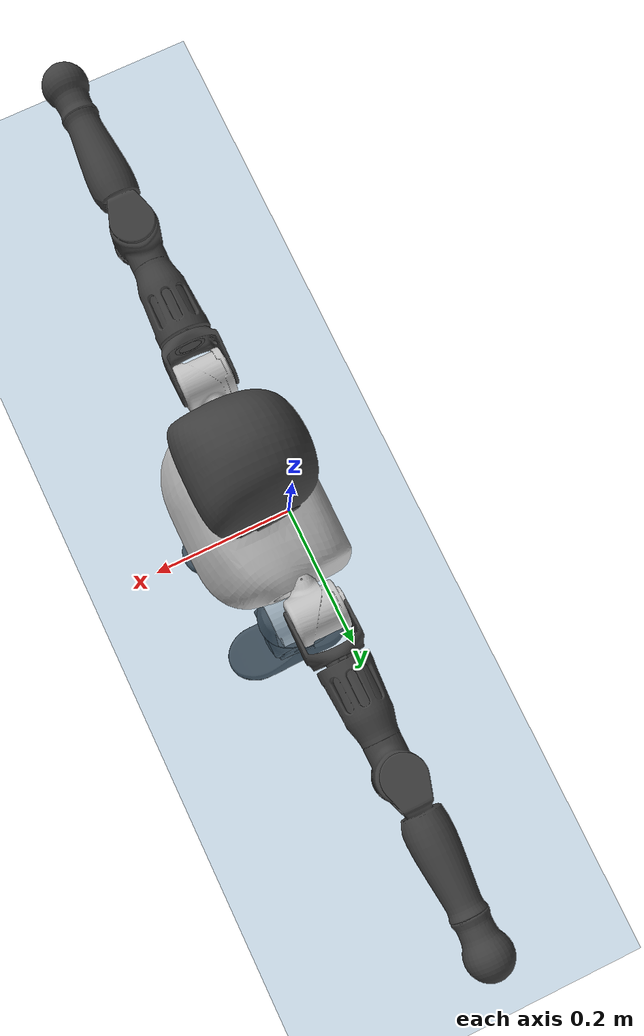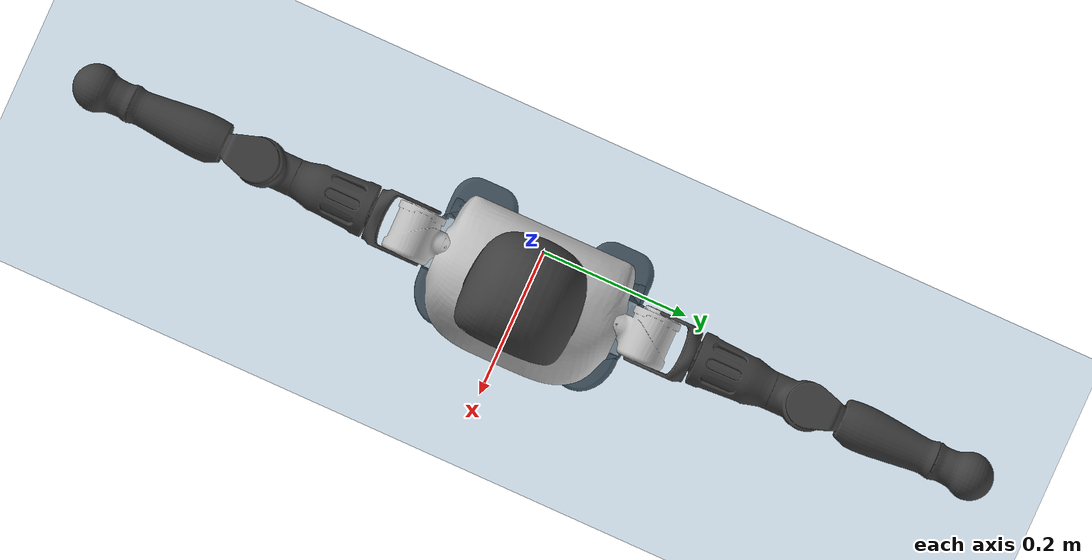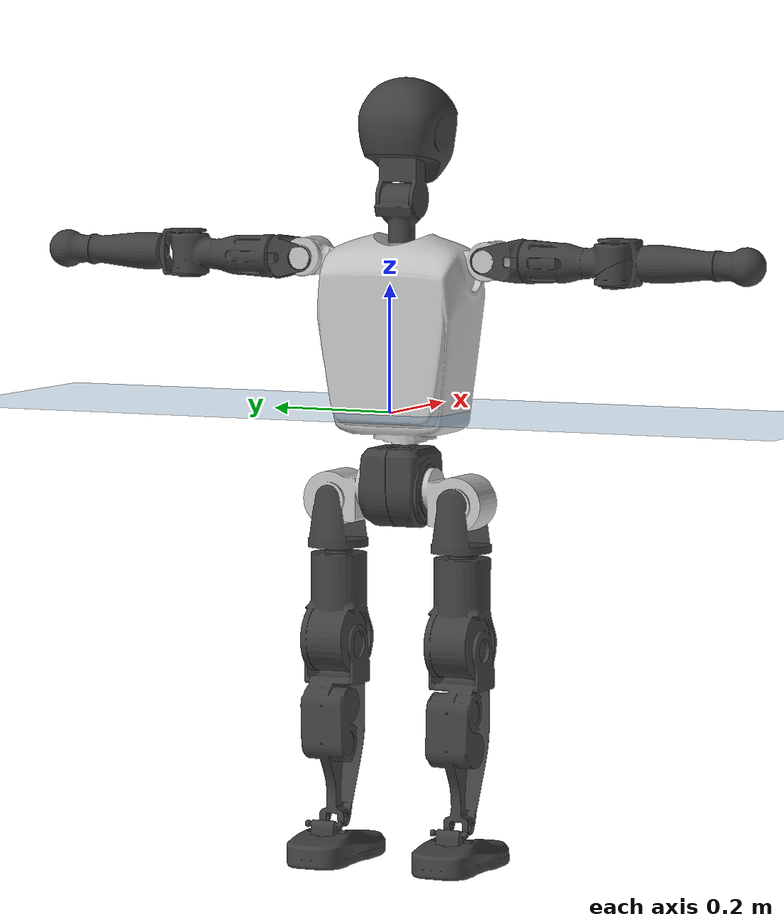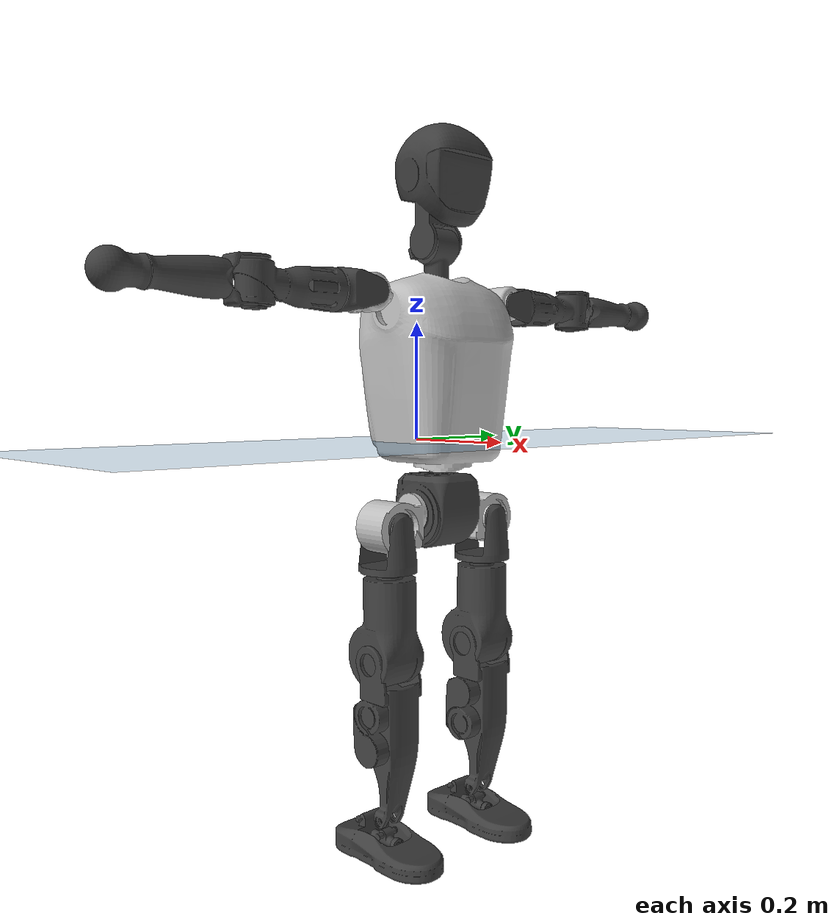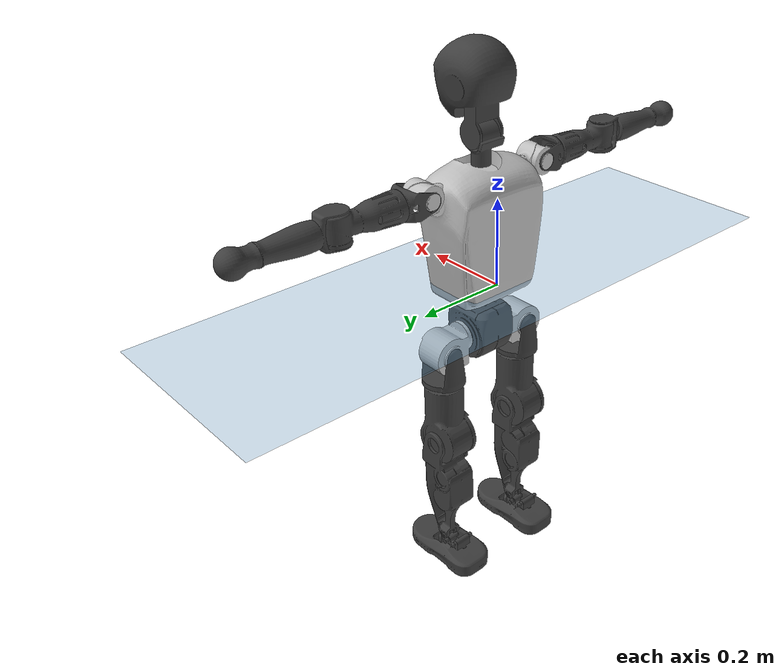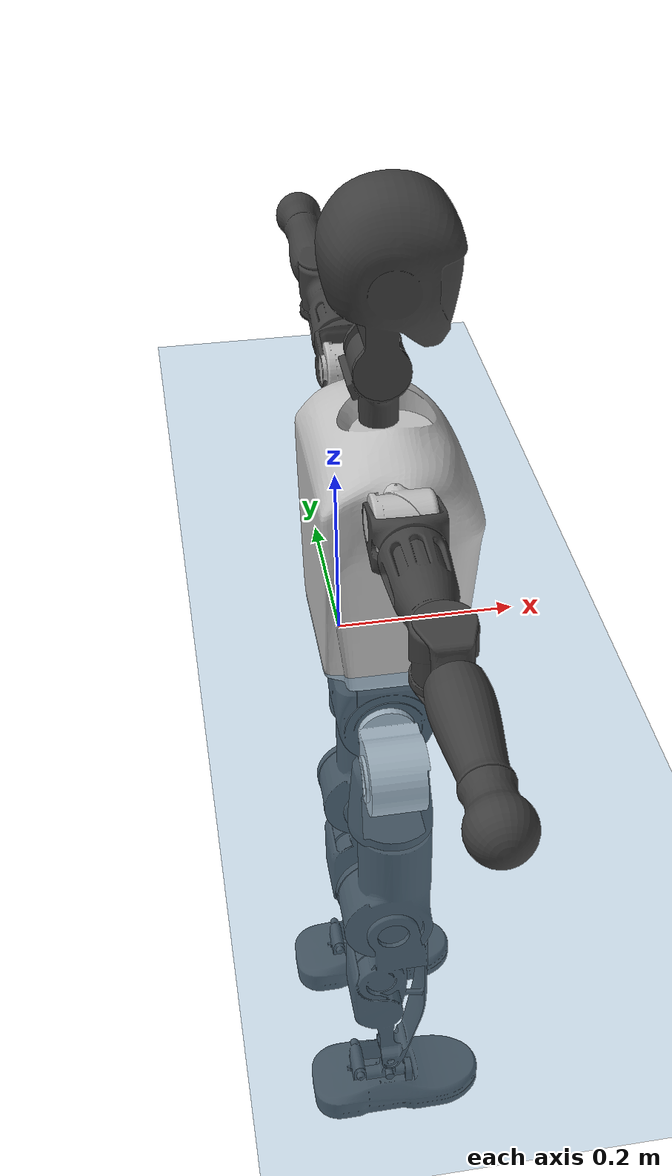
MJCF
<mujoco model="T1">
  <compiler angle="radian" assetdir="assets" balanceinertia="true" inertiafromgeom="false"/>

  <option timestep="0.005" density="1.2" viscosity="2e-05"/>

  <size nkey="1"/>

  <visual>
    <quality shadowsize="8192"/>
    <map shadowclip="0.5"/>
  </visual>

  <default>
    <default class="/">
      <joint armature="0.01" damping="0.01" frictionloss="0.1"/>
      <geom contype="0" conaffinity="0" group="1" solref="-1000 -80"/>
      <site size="0.01 0.005 0.005" group="5"/>
      <general forcelimited="true" biastype="affine" gainprm="25" biasprm="0 -25 -0.6"/>
      <default class="t1">
        <geom rgba="0.25 0.25 0.25 1"/>
        <default class="visual">
          <geom type="mesh" group="2"/>
        </default>
        <default class="collision">
          <geom group="3"/>
        </default>
        <default class="foot">
          <geom size="0.1115 0.05 0.015" type="box" condim="6" group="4" priority="1" solimp="0.015 1 0.015"/>
        </default>
        <default class="reward_collision_sphere">
          <geom group="5" rgba="1 0 0 1"/>
        </default>
      </default>
    </default>
  </default>

  <asset>
    <texture type="skybox" colorspace="auto" name="//unnamed_texture_0" builtin="gradient" rgb1="0.95 0.95 0.95" rgb2="0.95 0.95 0.95" width="100" height="600"/>
    <texture type="2d" colorspace="auto" name="texplane" builtin="checker" rgb1="0.345 0.575 0.748" rgb2="0.345 0.575 0.748" markrgb="1 1 1" width="512" height="512"/>
    <material name="MatPlane" class="/" texture="texplane" texuniform="true" texrepeat="2 2" specular="0.9"/>
    <mesh name="Trunk" class="/" file="Trunk.stl"/>
    <mesh name="H1" class="/" file="H1.stl"/>
    <mesh name="H2" class="/" file="H2.stl"/>
    <mesh name="AL1" class="/" file="AL1.stl"/>
    <mesh name="AL2" class="/" file="AL2.stl"/>
    <mesh name="AL3" class="/" file="AL3.stl"/>
    <mesh name="left_hand_link" class="/" file="left_hand_link.stl"/>
    <mesh name="AR1" class="/" file="AR1.stl"/>
    <mesh name="AR2" class="/" file="AR2.stl"/>
    <mesh name="AR3" class="/" file="AR3.stl"/>
    <mesh name="right_hand_link" class="/" file="right_hand_link.stl"/>
    <mesh name="Waist" class="/" file="Waist.stl"/>
    <mesh name="Hip_Pitch_Left" class="/" file="Hip_Pitch_Left.stl"/>
    <mesh name="Hip_Roll_Left" class="/" file="Hip_Roll_Left.stl"/>
    <mesh name="Hip_Yaw_Left" class="/" file="Hip_Yaw_Left.stl"/>
    <mesh name="Shank_Left" class="/" file="Shank_Left.stl"/>
    <mesh name="Ankle_Cross_Left" class="/" file="Ankle_Cross_Left.stl"/>
    <mesh name="left_foot_link" class="/" file="left_foot_link.stl"/>
    <mesh name="Hip_Pitch_Right" class="/" file="Hip_Pitch_Right.stl"/>
    <mesh name="Hip_Roll_Right" class="/" file="Hip_Roll_Right.stl"/>
    <mesh name="Hip_Yaw_Right" class="/" file="Hip_Yaw_Right.stl"/>
    <mesh name="Shank_Right" class="/" file="Shank_Right.stl"/>
    <mesh name="Ankle_Cross_Right" class="/" file="Ankle_Cross_Right.stl"/>
    <mesh name="right_foot_link" class="/" file="right_foot_link.stl"/>
  </asset>

  <worldbody>
    <geom name="floor" class="/" size="100 100 0.125" type="plane" group="0" material="MatPlane"/>
    <light name="toplight_shadow" class="/" pos="0 0 5" dir="0.0990148 0.0990148 -0.990148" type="directional" ambient="0.04 0.04 0.04" diffuse="0.55 0.55 0.55" specular="0.12 0.12 0.12"/>
    <light name="toplight_fill" class="/" pos="0 0 5" dir="0.0990148 0.0990148 -0.990148" type="directional" castshadow="false" ambient="0.04 0.04 0.04" diffuse="0.3 0.3 0.3" specular="0.08 0.08 0.08"/>
    <body name="trunk" childclass="t1" pos="-0.000234375 0.00251455 -0.00248663" quat="0.999999 0.000569791 -9.47694e-05 0.000932256">
      <inertial pos="0.0406903 -0.000424185 0.113287" quat="0.999963 -0.00137759 -0.00845967 0.000352823" mass="9.76536" diaginertia="0.0205384 0.0840514 0.0790479"/>
      <joint name="//unnamed_joint_0" type="free" armature="0" damping="0" frictionloss="0"/>
      <geom name="//unnamed_geom_1" class="visual" rgba="0.76 0.76 0.76 1" mesh="Trunk"/>
      <geom name="//unnamed_geom_2" class="collision" size="0.0713403 0.0951203 0.142681" pos="0.0449563 0 0.13018" type="box"/>
      <geom name="//unnamed_geom_3" class="reward_collision_sphere" size="0.109388" pos="0.0449563 0 0.108484"/>
      <geom name="//unnamed_geom_4" class="reward_collision_sphere" size="0.0142681" pos="0.0449563 0.0866577 0"/>
      <geom name="//unnamed_geom_5" class="reward_collision_sphere" size="0.0142681" pos="0.0449563 -0.0866577 0"/>
      <geom name="//unnamed_geom_6" class="reward_collision_sphere" size="0.0142681" pos="0.0449563 0.109087 0.195271"/>
      <geom name="//unnamed_geom_7" class="reward_collision_sphere" size="0.0142681" pos="0.0449563 -0.109087 0.195271"/>
      <site name="imu" pos="-0.0126869 0.00483867 -0.00272373" size="0.00951203"/>
      <camera name="track" pos="0 -2.039 0" quat="0.707107 0.707107 0 0" mode="trackcom"/>
      <camera name="ego_camera" pos="0.0914111 0 0.455632" quat="-0.5 -0.5 0.5 0.5"/>
      <body name="H1" pos="0.0482131 -0.000464426 0.265358" quat="0.999999 -0.000209036 7.5242e-05 -0.00136023">
        <inertial pos="0.00136397 -3.06854e-05 0.0620168" quat="0.764754 -0.0116667 0.00320934 0.644209" mass="0.389581" diaginertia="5.78395e-05 0.0002518 0.000215423"/>
        <joint name="AAHead_yaw" pos="0 0 0" axis="0.00315379 -0.00130317 0.999994" range="-1.61046 1.57096" armature="0.00911383" damping="0" frictionloss="0.0997642"/>
        <geom name="//unnamed_geom_8" class="visual" mesh="H1"/>
        <body name="H2" pos="-0.0010597 -0.000283773 0.0690702" quat="0.999999 0.00107453 0.000403416 -0.000352291">
          <inertial pos="0.00478126 4.48269e-05 0.106609" quat="0.98839 0.106296 -0.0744536 -0.0790101" mass="0.530533" diaginertia="0.000467058 0.00205757 0.00260704"/>
          <joint name="Head_pitch" pos="0 0 0" axis="-0.00883838 -0.999912 0.00990804" range="-1.27807 0.399658" armature="0.0108236" damping="0.0180794" frictionloss="0.106245"/>
          <geom name="//unnamed_geom_9" class="visual" mesh="H2"/>
          <geom name="//unnamed_geom_10" class="collision" size="0.0760963" pos="0.00749271 0 0.119332"/>
          <geom name="//unnamed_geom_11" class="reward_collision_sphere" size="0.0856083" pos="0.0149854 0 0.108484"/>
        </body>
      </body>
      <body name="AL1" pos="0.0461944 0.111217 0.240187" quat="0.999999 -3.40012e-05 0.00105137 0.00010884">
        <inertial pos="-0.00285037 0.0442646 -0.00196253" quat="0.498131 0.502728 -0.496609 0.502504" mass="0.442262" diaginertia="0.000313268 0.00141641 0.000431865"/>
        <joint name="Left_Shoulder_Pitch" pos="0 0 0" axis="-0.00163414 0.999997 -0.00205491" range="-3.29464 1.21696" armature="0.00940264" damping="0.0199405" frictionloss="0.0894812"/>
        <geom name="//unnamed_geom_12" class="visual" rgba="0.76 0.76 0.76 1" mesh="AL1"/>
        <body name="AL2" pos="-0.000749633 0.0498224 -0.00256304" quat="0.999999 -0.000361354 0.00061806 0.00109584">
          <inertial pos="0.00208283 0.0381845 -0.00286424" quat="0.48688 0.515824 -0.483021 0.513385" mass="0.143466" diaginertia="9.55614e-05 0.000371237 0.000266345"/>
          <joint name="Left_Shoulder_Roll" pos="0 0 0" axis="-0.999945 -0.00239843 0.0102147" range="-1.56051 1.74799" armature="0.00895505" damping="0.00332026" frictionloss="0.0832005"/>
          <geom name="//unnamed_geom_13" class="visual" mesh="AL2"/>
          <body name="AL3" pos="-0.00187998 0.0599269 0.000735787" quat="1 0.000159216 0.000202857 0.000652683">
            <inertial pos="0.000333447 0.0870835 0.00258851" quat="0.706544 0.707669 -0.000476862 -1.45067e-05" mass="0.885399" diaginertia="0.00310983 0.0142957 0.000913991"/>
            <joint name="Left_Elbow_Pitch" pos="0 0 0" axis="-0.00687168 -0.999911 -0.011427" stiffness="0.000576425" range="-2.29056 2.2804" armature="0.00950347" damping="0.00324867" frictionloss="0.101083"/>
            <geom name="//unnamed_geom_14" class="visual" mesh="AL3"/>
            <geom name="//unnamed_geom_15" class="collision" size="0.0285361 0.0713403" pos="0 0.0509751 0" quat="0.707105 0.707108 0 0" type="cylinder"/>
            <geom name="//unnamed_geom_16" class="reward_collision_sphere" size="0.0342433"/>
            <body name="left_hand_link" pos="-0.00221097 0.147947 0.00226092" quat="1 0.000262848 0.000196608 0.000182716">
              <inertial pos="-5.58069e-05 0.113307 0.00333696" quat="0.707836 0.706377 -3.67285e-05 -0.00023979" mass="0.284697" diaginertia="0.00192246 0.00950538 0.000332101"/>
              <joint name="Left_Elbow_Yaw" pos="0 0 0" axis="-0.0132038 -0.00696361 0.999889" range="-2.44032 0.00300161" armature="0.0089162" damping="0.0103489" frictionloss="0.106818"/>
              <geom name="//unnamed_geom_17" class="visual" mesh="left_hand_link"/>
              <geom name="//unnamed_geom_18" class="collision" size="0.0285361 0.0832303" pos="0 0.132535 0" quat="0.707105 0.707108 0 0" type="cylinder"/>
              <geom name="//unnamed_geom_19" class="reward_collision_sphere" size="0.0475602"/>
              <geom name="//unnamed_geom_20" class="reward_collision_sphere" size="0.0332921" pos="0 0.112145 0"/>
              <geom name="//unnamed_geom_21" class="reward_collision_sphere" size="0.0332921" pos="0 0.219193 0"/>
            </body>
          </body>
        </body>
      </body>
      <body name="AR1" pos="0.0456712 -0.109601 0.240648" quat="0.999999 0.000786377 0.000225887 -0.000842682">
        <inertial pos="0.000534423 -0.0477008 -0.000473332" quat="0.507457 0.495406 -0.497499 0.499554" mass="0.452038" diaginertia="0.000308674 0.00141918 0.000432846"/>
        <joint name="Right_Shoulder_Pitch" pos="0 0 0" axis="0.00384987 -0.999993 -0.000161504" range="-1.22341 3.35915" armature="0.00977805" damping="0" frictionloss="0.0902187"/>
        <geom name="//unnamed_geom_22" class="visual" rgba="0.76 0.76 0.76 1" mesh="AR1"/>
        <body name="AR2" pos="-0.00121796 -0.0466215 0.00148222" quat="0.999999 -0.000303998 -0.000602753 -0.00115692">
          <inertial pos="0.00161343 -0.0390039 0.003066" quat="0.511791 0.487658 -0.511089 0.488926" mass="0.132812" diaginertia="9.71871e-05 0.000384914 0.000255978"/>
          <joint name="Right_Shoulder_Roll" pos="0 0 0" axis="-0.999896 0.000819924 0.0143928" stiffness="0.00237302" range="-1.74132 1.58015" armature="0.00964266" damping="0.0161137" frictionloss="0.108217"/>
          <geom name="//unnamed_geom_23" class="visual" mesh="AR2"/>
          <body name="AR3" pos="-0.000569506 -0.0588316 -0.000623843" quat="1 2.08154e-06 3.36605e-05 -2.05936e-06">
            <inertial pos="-0.00259873 -0.0868494 -0.000494761" quat="0.705265 0.708824 0.0117368 -0.00556074" mass="0.891989" diaginertia="0.00291112 0.0134202 0.000932727"/>
            <joint name="Right_Elbow_Pitch" pos="0 0 0" axis="-0.00216486 0.999955 -0.00918967" range="-2.25993 2.2269" armature="0.00805498" damping="0.00415178" frictionloss="0.0997263"/>
            <geom name="//unnamed_geom_24" class="visual" mesh="AR3"/>
            <geom name="//unnamed_geom_25" class="collision" size="0.0285361 0.0713403" pos="0 -0.0509751 0" quat="0.707105 0.707108 0 0" type="cylinder"/>
            <geom name="//unnamed_geom_26" class="reward_collision_sphere" size="0.0342433"/>
            <body name="right_hand_link" pos="-0.000146046 -0.150571 0.00251195" quat="1 -1.25109e-06 2.51407e-05 -4.85921e-06">
              <inertial pos="-0.0027096 -0.108734 0.00076196" quat="0.706811 0.707402 2.92687e-05 0.000226361" mass="0.275598" diaginertia="0.00190587 0.00865235 0.000322858"/>
              <joint name="Right_Elbow_Yaw" pos="0 0 0" axis="-0.000853871 0.000167652 1" range="0.0173936 2.44266" armature="0.00928752" damping="0.00280694" frictionloss="0.0921546"/>
              <geom name="//unnamed_geom_27" class="visual" mesh="right_hand_link"/>
              <geom name="//unnamed_geom_28" class="collision" size="0.0285361 0.0832303" pos="0 -0.132535 0" quat="0.707105 0.707108 0 0" type="cylinder"/>
              <geom name="//unnamed_geom_29" class="reward_collision_sphere" size="0.0475602"/>
              <geom name="//unnamed_geom_30" class="reward_collision_sphere" size="0.0332921" pos="0 -0.112145 0"/>
              <geom name="//unnamed_geom_31" class="reward_collision_sphere" size="0.0332921" pos="0 -0.219193 0"/>
            </body>
          </body>
        </body>
      </body>
      <body name="Waist" pos="0.0490846 0.000583256 -0.122638" quat="1 2.03068e-05 -4.85622e-06 3.84421e-05">
        <inertial pos="0.00423972 -0.00026145 0.00926336" quat="0.983426 0.000149631 -0.181304 0.00163695" mass="2.20096" diaginertia="0.00121848 0.00597264 0.0068574"/>
        <joint name="Waist" pos="0 0 0" axis="-0.00277373 0.000345178 0.999996" range="-1.62495 1.60906" armature="0.00962275" damping="0" frictionloss="0.0952991"/>
        <geom name="//unnamed_geom_32" class="visual" mesh="Waist"/>
        <body name="Hip_Pitch_Left" pos="0.000165239 0.110317 0.00280777" quat="1 -0.000552468 -0.000133925 -9.90669e-05">
          <inertial pos="-0.00143139 -0.00739571 -0.0219858" quat="0.97474 0.222811 0.0153465 0.00156798" mass="0.904671" diaginertia="0.000438037 0.0015942 0.00185491"/>
          <joint name="Left_Hip_Pitch" pos="0 0 0" axis="0.0054083 0.99997 0.00558179" range="-1.74276 1.57711" armature="0.00958462" damping="0" frictionloss="0.0819113"/>
          <geom name="//unnamed_geom_33" class="visual" rgba="0.76 0.76 0.76 1" mesh="Hip_Pitch_Left"/>
          <body name="Hip_Roll_Left" pos="0.00298108 0.000443769 -0.020416" quat="1 2.68184e-06 -4.37068e-06 2.05258e-06">
            <inertial pos="0.00108495 0.00100337 -0.0578713" quat="0.705855 -0.00673122 -0.0131471 0.708202" mass="0.34621" diaginertia="0.00043006 0.00177648 0.00080247"/>
            <joint name="Left_Hip_Roll" pos="0 0 0" axis="-1 -5.00115e-05 0.000141765" range="-1.51304 0.202666" armature="0.00963825" damping="0.0229868" frictionloss="0.0823024"/>
            <geom name="//unnamed_geom_34" class="visual" mesh="Hip_Roll_Left"/>
            <geom name="//unnamed_geom_35" class="reward_collision_sphere" size="0.0523162"/>
            <body name="Hip_Yaw_Left" pos="-0.00120543 -0.0012854 -0.0870838" quat="1 1.05359e-05 -3.76939e-06 -3.70834e-05">
              <inertial pos="-0.00536806 -2.83955e-05 -0.0996425" quat="0.69678 -0.0368946 -0.0314124 0.715647" mass="1.81381" diaginertia="0.00625942 0.0281231 0.0039407"/>
              <joint name="Left_Hip_Yaw" pos="0 0 0" axis="0.00176582 -0.0109766 -0.999938" range="-1.01845 1.06358" armature="0.00820251" damping="0" frictionloss="0.0821238"/>
              <geom name="//unnamed_geom_36" class="visual" mesh="Hip_Yaw_Left"/>
              <geom name="//unnamed_geom_37" class="collision" size="0.0475602 0.0760963" type="cylinder"/>
              <body name="Shank_Left" pos="-0.0110375 0.00256845 -0.14321" quat="0.999999 -0.000898117 0.000737479 -0.000176427">
                <inertial pos="-0.0026392 -0.00158866 -0.135892" quat="0.996751 0.00854258 -0.0322816 0.073298" mass="1.51227" diaginertia="0.00866892 0.0392064 0.00284604"/>
                <joint name="Left_Knee_Pitch" pos="0 0 0" axis="-0.0153634 0.999872 -0.00443624" stiffness="0.00143109" range="0.00192972 2.34276" armature="0.0107901" damping="0.0117291" frictionloss="0.0826669"/>
                <geom name="//unnamed_geom_38" class="visual" mesh="Shank_Left"/>
                <geom name="//unnamed_geom_39" class="collision" size="0.0475602 0.0713403" pos="0 0 -0.13018" type="cylinder"/>
                <geom name="//unnamed_geom_40" class="reward_collision_sphere" size="0.0618282"/>
                <body name="Ankle_Cross_Left" pos="-0.0025267 -0.0010867 -0.303681" quat="1 -0.00017745 -6.84767e-05 7.74049e-05">
                  <inertial pos="-0.00361786 0.000677925 -0.00902548" quat="0.450787 0.542235 0.552807 0.444046" mass="0.0633275" diaginertia="6.87752e-06 2.87245e-05 1.71373e-05"/>
                  <joint name="Left_Ankle_Pitch" pos="0 0 0" axis="-0.00452838 0.999959 -0.00785331" stiffness="0.000198811" range="-0.863191 0.293944" armature="0.00961629" damping="0.0153533" frictionloss="0.09254"/>
                  <geom name="//unnamed_geom_41" class="visual" mesh="Ankle_Cross_Left"/>
                  <body name="left_foot_link" pos="0.00225061 -0.000109851 -0.0129065" quat="0.999999 -0.000958001 -0.000569962 -2.62236e-06">
                    <inertial pos="-3.41729e-05 -3.92334e-06 -0.00778266" quat="-4.97878e-05 0.620693 1.77573e-05 0.784053" mass="0.566626" diaginertia="0.000610473 0.00262609 0.00317648"/>
                    <joint name="Left_Ankle_Roll" pos="0 0 0" axis="-0.999894 -0.0119063 0.00837269" range="-0.496638 0.469647" armature="0.00945318" damping="0.0202293" frictionloss="0.0949269"/>
                    <geom name="//unnamed_geom_42" class="visual" mesh="left_foot_link"/>
                    <geom name="left_foot" class="foot" size="0.114808 0.0517598 0.0155803" pos="0.00749271 0 -0.0162726"/>
                    <geom name="//unnamed_geom_44" class="reward_collision_sphere" size="0.0494626" pos="0.00749271 0 -0.0162726"/>
                    <geom name="//unnamed_geom_45" class="reward_collision_sphere" size="0.0285361" pos="0.0711808 -0.0234485 -0.0162726"/>
                    <geom name="//unnamed_geom_46" class="reward_collision_sphere" size="0.0285361" pos="-0.052449 -0.0234485 -0.0162726"/>
                    <site name="left_foot" class="foot" pos="0.00749271 0 -0.0162726" size="0.00951203"/>
                  </body>
                </body>
              </body>
            </body>
          </body>
        </body>
        <body name="Hip_Pitch_Right" pos="-0.00369584 -0.108113 0.00255616" quat="0.999999 0.000468476 -3.55282e-05 0.000992818">
          <inertial pos="-0.000517806 0.00553572 -0.0199113" quat="0.972553 -0.231775 0.019633 -0.00601177" mass="0.876128" diaginertia="0.000419691 0.00161042 0.00191748"/>
          <joint name="Right_Hip_Pitch" pos="0 0 0" axis="0.00284812 -0.999989 -0.00365519" range="-1.52204 1.74401" armature="0.00955398" damping="0.0196953" frictionloss="0.106417"/>
          <geom name="//unnamed_geom_47" class="visual" rgba="0.76 0.76 0.76 1" mesh="Hip_Pitch_Right"/>
          <body name="Hip_Roll_Right" pos="-0.00303578 0.00137784 -0.0188783" quat="1 -8.3295e-06 4.74032e-05 -5.56504e-05">
            <inertial pos="0.00109345 -0.000457831 -0.0565242" quat="0.706966 -0.00534456 -0.0059329 0.707202" mass="0.331746" diaginertia="0.00040248 0.00169058 0.00077874"/>
            <joint name="Right_Hip_Roll" pos="0 0 0" axis="-0.99989 -0.0148392 -0.000127924" range="-0.149514 1.55154" armature="0.0094582" damping="0" frictionloss="0.108426"/>
            <geom name="//unnamed_geom_48" class="visual" mesh="Hip_Roll_Right"/>
            <geom name="//unnamed_geom_49" class="reward_collision_sphere" size="0.0523162"/>
            <body name="Hip_Yaw_Right" pos="0.00244991 -0.000924229 -0.0864186" quat="1 -5.67737e-05 9.32284e-05 4.89154e-06">
              <inertial pos="-0.00753005 0.00177897 -0.0977857" quat="0.71442 -0.0313335 -0.0337574 0.6982" mass="1.80219" diaginertia="0.00612224 0.0272937 0.00374745"/>
              <joint name="Right_Hip_Yaw" pos="0 0 0" axis="0.00964761 -0.000850295 -0.999953" range="-1.01403 1.00006" armature="0.00939279" damping="0.0208167" frictionloss="0.0957038"/>
              <geom name="//unnamed_geom_50" class="visual" mesh="Hip_Yaw_Right"/>
              <geom name="//unnamed_geom_51" class="collision" size="0.0475602 0.0760963" type="cylinder"/>
              <body name="Shank_Right" pos="-0.00915909 0.000808352 -0.14329" quat="1 2.10544e-05 6.69488e-05 2.88505e-05">
                <inertial pos="-0.00635411 0.000296571 -0.135771" quat="0.999251 -0.00335656 -0.0136443 -0.0360458" mass="1.5436" diaginertia="0.00813007 0.0386361 0.00285258"/>
                <joint name="Right_Knee_Pitch" pos="0 0 0" axis="-0.00842119 -0.999961 0.0025742" range="-2.32973 -0.0557388" armature="0.0097518" damping="0.00977696" frictionloss="0.0825296"/>
                <geom name="//unnamed_geom_52" class="visual" mesh="Shank_Right"/>
                <geom name="//unnamed_geom_53" class="collision" size="0.0475602 0.0713403" pos="0 0 -0.13018" type="cylinder"/>
                <geom name="//unnamed_geom_54" class="reward_collision_sphere" size="0.0618282"/>
                <body name="Ankle_Cross_Right" pos="-0.00175405 -0.00235926 -0.306825" quat="1 0.000224569 -0.000160039 -3.19389e-05">
                  <inertial pos="-0.00242791 -0.0016919 -0.00779626" quat="0.440786 0.558612 0.544224 0.444388" mass="0.0611371" diaginertia="6.89491e-06 2.86632e-05 1.70185e-05"/>
                  <joint name="Right_Ankle_Pitch" pos="0 0 0" axis="-0.00094606 -0.999998 0.00181815" range="-0.313524 0.91804" armature="0.0100533" damping="0.00882056" frictionloss="0.0956852"/>
                  <geom name="//unnamed_geom_55" class="visual" mesh="Ankle_Cross_Right"/>
                  <body name="right_foot_link" pos="0.000701753 -0.000604566 -0.0112446" quat="1 -8.15474e-05 2.60515e-05 -5.33831e-05">
                    <inertial pos="-0.000500717 -0.00111746 -0.00764788" quat="-0.00445711 0.621311 0.00256416 0.783547" mass="0.596889" diaginertia="0.00063307 0.00254631 0.00328885"/>
                    <joint name="Right_Ankle_Roll" pos="0 0 0" axis="-0.999999 -0.000459982 0.000946093" range="-0.436002 0.440532" armature="0.00888136" damping="0.000402462" frictionloss="0.104096"/>
                    <geom name="//unnamed_geom_56" class="visual" mesh="right_foot_link"/>
                    <geom name="right_foot" class="foot" size="0.101494 0.042462 0.0154451" pos="0.00749271 0 -0.0162726"/>
                    <geom name="//unnamed_geom_58" class="reward_collision_sphere" size="0.0380481"/>
                    <geom name="//unnamed_geom_59" class="reward_collision_sphere" size="0.0285361" pos="0.00749271 0 -0.0162726"/>
                    <geom name="//unnamed_geom_60" class="reward_collision_sphere" size="0.0285361" pos="0.0711808 0.0234485 -0.0162726"/>
                    <geom name="//unnamed_geom_61" class="reward_collision_sphere" size="0.0285361" pos="-0.052449 0.0234485 -0.0162726"/>
                    <site name="right_foot" class="foot" pos="0.00749271 0 -0.0162726" size="0.00951203"/>
                  </body>
                </body>
              </body>
            </body>
          </body>
        </body>
      </body>
    </body>
  </worldbody>

  <contact>
    <pair class="/" geom1="floor" geom2="left_foot" name="//unnamed_contact_0"/>
    <pair class="/" geom1="floor" geom2="right_foot" name="//unnamed_contact_1"/>
  </contact>

  <actuator>
    <general name="AAHead_yaw" class="/" joint="AAHead_yaw" forcerange="-6.71865 6.71865" gainprm="25.49" biasprm="0 -25.49 -0.563257"/>
    <general name="Head_pitch" class="/" joint="Head_pitch" forcerange="-7.04331 7.04331" gainprm="25.49" biasprm="0 -25.49 -0.563257"/>
    <general name="Left_Shoulder_Pitch" class="/" joint="Left_Shoulder_Pitch" forcerange="-16.1079 16.1079" gainprm="25.49" biasprm="0 -25.49 -0.563257"/>
    <general name="Left_Shoulder_Roll" class="/" joint="Left_Shoulder_Roll" forcerange="-16.864 16.864" gainprm="25.49" biasprm="0 -25.49 -0.563257"/>
    <general name="Left_Elbow_Pitch" class="/" joint="Left_Elbow_Pitch" forcerange="-15.4506 15.4506" gainprm="25.49" biasprm="0 -25.49 -0.563257"/>
    <general name="Left_Elbow_Yaw" class="/" joint="Left_Elbow_Yaw" forcerange="-17.1208 17.1208" gainprm="25.49" biasprm="0 -25.49 -0.563257"/>
    <general name="Right_Shoulder_Pitch" class="/" joint="Right_Shoulder_Pitch" forcerange="-16.7933 16.7933" gainprm="25.49" biasprm="0 -25.49 -0.563257"/>
    <general name="Right_Shoulder_Roll" class="/" joint="Right_Shoulder_Roll" forcerange="-18.6222 18.6222" gainprm="25.49" biasprm="0 -25.49 -0.563257"/>
    <general name="Right_Elbow_Pitch" class="/" joint="Right_Elbow_Pitch" forcerange="-17.2478 17.2478" gainprm="25.49" biasprm="0 -25.49 -0.563257"/>
    <general name="Right_Elbow_Yaw" class="/" joint="Right_Elbow_Yaw" forcerange="-16.8023 16.8023" gainprm="25.49" biasprm="0 -25.49 -0.563257"/>
    <general name="Waist" class="/" joint="Waist" forcerange="-28.425 28.425" gainprm="25.49" biasprm="0 -25.49 -0.563257"/>
    <general name="Left_Hip_Pitch" class="/" joint="Left_Hip_Pitch" forcerange="-42.7364 42.7364" gainprm="25.49" biasprm="0 -25.49 -0.563257"/>
    <general name="Left_Hip_Roll" class="/" joint="Left_Hip_Roll" forcerange="-31.0849 31.0849" gainprm="25.49" biasprm="0 -25.49 -0.563257"/>
    <general name="Left_Hip_Yaw" class="/" joint="Left_Hip_Yaw" forcerange="-26.0522 26.0522" gainprm="25.49" biasprm="0 -25.49 -0.563257"/>
    <general name="Left_Knee_Pitch" class="/" joint="Left_Knee_Pitch" forcerange="-62.0098 62.0098" gainprm="25.49" biasprm="0 -25.49 -0.563257"/>
    <general name="Left_Ankle_Pitch" class="/" joint="Left_Ankle_Pitch" forcerange="-17.3599 17.3599" gainprm="25.49" biasprm="0 -25.49 -0.563257"/>
    <general name="Left_Ankle_Roll" class="/" joint="Left_Ankle_Roll" forcerange="-13.1585 13.1585" gainprm="25.49" biasprm="0 -25.49 -0.563257"/>
    <general name="Right_Hip_Pitch" class="/" joint="Right_Hip_Pitch" forcerange="-38.4692 38.4692" gainprm="25.49" biasprm="0 -25.49 -0.563257"/>
    <general name="Right_Hip_Roll" class="/" joint="Right_Hip_Roll" forcerange="-29.5452 29.5452" gainprm="25.49" biasprm="0 -25.49 -0.563257"/>
    <general name="Right_Hip_Yaw" class="/" joint="Right_Hip_Yaw" forcerange="-31.2997 31.2997" gainprm="25.49" biasprm="0 -25.49 -0.563257"/>
    <general name="Right_Knee_Pitch" class="/" joint="Right_Knee_Pitch" forcerange="-57.7339 57.7339" gainprm="25.49" biasprm="0 -25.49 -0.563257"/>
    <general name="Right_Ankle_Pitch" class="/" joint="Right_Ankle_Pitch" forcerange="-18.9626 18.9626" gainprm="25.49" biasprm="0 -25.49 -0.563257"/>
    <general name="Right_Ankle_Roll" class="/" joint="Right_Ankle_Roll" forcerange="-14.6109 14.6109" gainprm="25.49" biasprm="0 -25.49 -0.563257"/>
  </actuator>

  <sensor>
    <gyro site="imu" name="imu_angular_velocity"/>
    <velocimeter site="imu" name="imu_linear_velocity"/>
    <framelinvel objtype="site" objname="left_foot" name="left_foot_global_linear_velocity"/>
    <framelinvel objtype="site" objname="right_foot" name="right_foot_global_linear_velocity"/>
  </sensor>

  <keyframe>
    <key name="home" qpos="0 0 0.6385 1 0 0 0 0 0 0 1.4 0 -0.4 0 -1.4 0 0.4 0 -0.4 0 0 0.8 -0.4 0 0.4 0 0 -0.8 0.4 0"/>
  </keyframe>
</mujoco>
